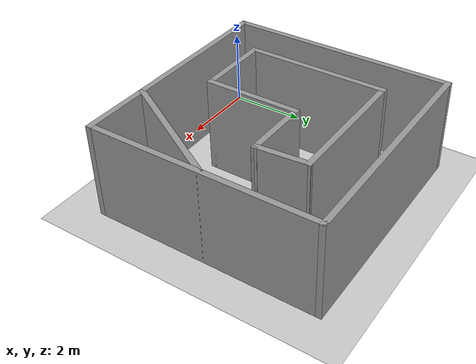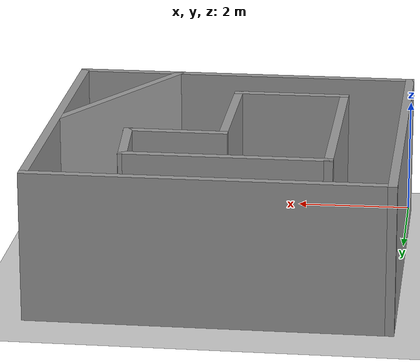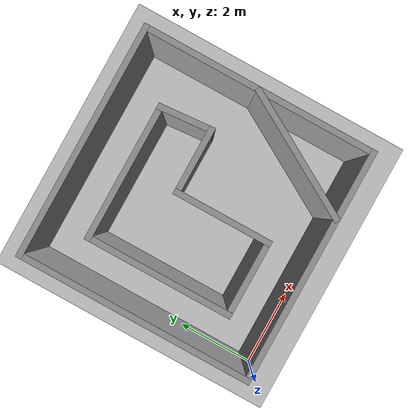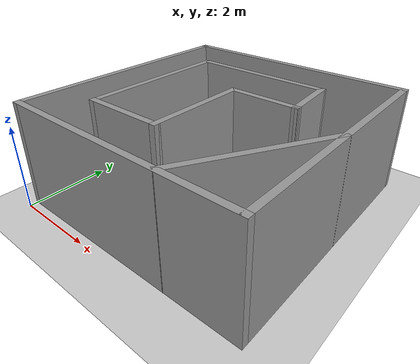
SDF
<sdf version="1.7">
 <world name="default">
  <light name="sun" type="directional">
   <pose>0 0 10 0 -0 0</pose>
   <diffuse>0.8 0.8 0.8 1</diffuse>
   <specular>0.2 0.2 0.2 1</specular>
   <attenuation>
    <range>1000</range>
    <constant>0.9</constant>
    <linear>0.01</linear>
    <quadratic>0.001</quadratic>
   </attenuation>
   <direction>-0.1 0.1 -0.9</direction>
   <spot><inner_angle>0</inner_angle><outer_angle>0</outer_angle><falloff>0</falloff></spot>
  </light>
  <model name="ground_plane">
   <static>1</static>
   <link name="link">
    <collision name="collision">
     <geometry><plane><normal>0 0 1</normal><size>100 100</size></plane></geometry>
     <surface>
      <contact><collide_bitmask>65535</collide_bitmask></contact>
      <friction><ode><mu>100</mu><mu2>50</mu2></ode></friction>
     </surface>
    </collision>
    <visual name="visual">
     <cast_shadows>0</cast_shadows>
     <geometry><plane><normal>0 0 1</normal><size>100 100</size></plane></geometry>
     <material>
      <script><uri>file://media/materials/scripts/gazebo.material</uri><name>Gazebo/Grey</name></script>
     </material>
    </visual>
   </link>
  </model>
  <gravity>0 0 -9.81</gravity>
  <magnetic_field>6e-06 2.3e-05 -4.2e-05</magnetic_field>
  <atmosphere type="adiabatic"/>
  <physics name="default_physics" default="0" type="ode">
   <max_step_size>0.001</max_step_size>
   <real_time_factor>1</real_time_factor>
   <real_time_update_rate>1000</real_time_update_rate>
  </physics>
  <scene><ambient>0.99 0.99 0.85 1</ambient><background>0.7 0.7 0.7 1</background><shadows>1</shadows></scene>
  <spherical_coordinates>
   <surface_model>EARTH_WGS84</surface_model>
   <latitude_deg>0</latitude_deg>
   <longitude_deg>0</longitude_deg>
   <elevation>0</elevation>
   <heading_deg>0</heading_deg>
  </spherical_coordinates>
  <model name="maze_walls">
   <pose>2.45275 3.18267 0 0 -0 1.5708</pose>
   <link name="Wall_0">
    <collision name="Wall_0_Collision">
     <geometry><box><size>6 0.15 2.5</size></box></geometry>
     <pose>0 0 1.25 0 -0 0</pose>
    </collision>
    <visual name="Wall_0_Visual">
     <pose>0 0 1.25 0 -0 0</pose>
     <geometry><box><size>6 0.15 2.5</size></box></geometry>
     <material>
      <script><uri>file://media/materials/scripts/gazebo.material</uri><name>Gazebo/Grey</name></script>
      <ambient>1 1 1 1</ambient>
     </material>
     <meta><layer>0</layer></meta>
    </visual>
    <pose>2.92873 -0.496274 0 0 -0 1.5708</pose>
   </link>
   <link name="Wall_1">
    <collision name="Wall_1_Collision">
     <geometry><box><size>6 0.15 2.5</size></box></geometry>
     <pose>0 0 1.25 0 -0 0</pose>
    </collision>
    <visual name="Wall_1_Visual">
     <pose>0 0 1.25 0 -0 0</pose>
     <geometry><box><size>6 0.15 2.5</size></box></geometry>
     <material>
      <script><uri>file://media/materials/scripts/gazebo.material</uri><name>Gazebo/Grey</name></script>
      <ambient>1 1 1 1</ambient>
     </material>
     <meta><layer>0</layer></meta>
    </visual>
    <pose>0.003726 2.42873 0 0 -0 3.14159</pose>
   </link>
   <link name="Wall_11">
    <collision name="Wall_11_Collision">
     <geometry><box><size>2.5 0.15 2.5</size></box></geometry>
     <pose>0 0 1.25 0 -0 0</pose>
    </collision>
    <visual name="Wall_11_Visual">
     <pose>0 0 1.25 0 -0 0</pose>
     <geometry><box><size>2.5 0.15 2.5</size></box></geometry>
     <material>
      <script><uri>file://media/materials/scripts/gazebo.material</uri><name>Gazebo/Grey</name></script>
      <ambient>1 1 1 1</ambient>
     </material>
     <meta><layer>0</layer></meta>
    </visual>
    <pose>-0.656274 -0.511274 0 0 -0 0</pose>
   </link>
   <link name="Wall_12">
    <collision name="Wall_12_Collision">
     <geometry><box><size>1.75 0.15 2.5</size></box></geometry>
     <pose>0 0 1.25 0 -0 0</pose>
    </collision>
    <visual name="Wall_12_Visual">
     <pose>0 0 1.25 0 -0 0</pose>
     <geometry><box><size>1.75 0.15 2.5</size></box></geometry>
     <material>
      <script><uri>file://media/materials/scripts/gazebo.material</uri><name>Gazebo/Grey</name></script>
      <ambient>1 1 1 1</ambient>
     </material>
     <meta><layer>0</layer></meta>
    </visual>
    <pose>0.518726 -1.31127 0 0 -0 -1.5708</pose>
   </link>
   <link name="Wall_13">
    <collision name="Wall_13_Collision">
     <geometry><box><size>1.40399 0.15 2.5</size></box></geometry>
     <pose>0 0 1.25 0 -0 0</pose>
    </collision>
    <visual name="Wall_13_Visual">
     <pose>0 0 1.25 0 -0 0</pose>
     <geometry><box><size>1.40399 0.15 2.5</size></box></geometry>
     <material>
      <script><uri>file://media/materials/scripts/gazebo.material</uri><name>Gazebo/Grey</name></script>
      <ambient>1 1 1 1</ambient>
     </material>
     <meta><layer>0</layer></meta>
    </visual>
    <pose>1.14373 -2.06127 0 0 -0 0.07983</pose>
   </link>
   <link name="Wall_15">
    <collision name="Wall_15_Collision">
     <geometry><box><size>3.5 0.15 2.5</size></box></geometry>
     <pose>0 0 1.25 0 -0 0</pose>
    </collision>
    <visual name="Wall_15_Visual">
     <pose>0 0 1.25 0 -0 0</pose>
     <geometry><box><size>3.5 0.15 2.5</size></box></geometry>
     <material>
      <script><uri>file://media/materials/scripts/gazebo.material</uri><name>Gazebo/Grey</name></script>
      <ambient>1 1 1 1</ambient>
     </material>
     <meta><layer>0</layer></meta>
    </visual>
    <pose>-1.45068 -2.55877 0 0 -0 -0.523599</pose>
   </link>
   <link name="Wall_3">
    <collision name="Wall_3_Collision">
     <geometry><box><size>3.5 0.15 2.5</size></box></geometry>
     <pose>0 0 1.25 0 -0 0</pose>
    </collision>
    <visual name="Wall_3_Visual">
     <pose>0 0 1.25 0 -0 0</pose>
     <geometry><box><size>3.5 0.15 2.5</size></box></geometry>
     <material>
      <script><uri>file://media/materials/scripts/gazebo.material</uri><name>Gazebo/Grey</name></script>
      <ambient>1 1 1 1</ambient>
     </material>
     <meta><layer>0</layer></meta>
    </visual>
    <pose>1.76873 -0.336274 0 0 -0 1.5708</pose>
   </link>
   <link name="Wall_4">
    <collision name="Wall_4_Collision">
     <geometry><box><size>3.75 0.15 2.5</size></box></geometry>
     <pose>0 0 1.25 0 -0 0</pose>
    </collision>
    <visual name="Wall_4_Visual">
     <pose>0 0 1.25 0 -0 0</pose>
     <geometry><box><size>3.75 0.15 2.5</size></box></geometry>
     <material>
      <script><uri>file://media/materials/scripts/gazebo.material</uri><name>Gazebo/Grey</name></script>
      <ambient>1 1 1 1</ambient>
     </material>
     <meta><layer>0</layer></meta>
    </visual>
    <pose>-0.031274 1.33873 0 0 -0 3.14159</pose>
   </link>
   <link name="Wall_6">
    <collision name="Wall_6_Collision">
     <geometry><box><size>6 0.15 2.5</size></box></geometry>
     <pose>0 0 1.25 0 -0 0</pose>
    </collision>
    <visual name="Wall_6_Visual">
     <pose>0 0 1.25 0 -0 0</pose>
     <geometry><box><size>6 0.15 2.5</size></box></geometry>
     <material>
      <script><uri>file://media/materials/scripts/gazebo.material</uri><name>Gazebo/Grey</name></script>
      <ambient>1 1 1 1</ambient>
     </material>
     <meta><layer>0</layer></meta>
    </visual>
    <pose>-2.92127 -0.496274 0 0 -0 -1.5708</pose>
   </link>
   <link name="Wall_7">
    <collision name="Wall_7_Collision">
     <geometry><box><size>6 0.15 2.5</size></box></geometry>
     <pose>0 0 1.25 0 -0 0</pose>
    </collision>
    <visual name="Wall_7_Visual">
     <pose>0 0 1.25 0 -0 0</pose>
     <geometry><box><size>6 0.15 2.5</size></box></geometry>
     <material>
      <script><uri>file://media/materials/scripts/gazebo.material</uri><name>Gazebo/Grey</name></script>
      <ambient>1 1 1 1</ambient>
     </material>
     <meta><layer>0</layer></meta>
    </visual>
    <pose>0.003726 -3.42127 0 0 -0 0</pose>
   </link>
   <link name="Wall_9">
    <collision name="Wall_9_Collision">
     <geometry><box><size>2 0.15 2.5</size></box></geometry>
     <pose>0 0 1.25 0 -0 0</pose>
    </collision>
    <visual name="Wall_9_Visual">
     <pose>0 0 1.25 0 -0 0</pose>
     <geometry><box><size>2 0.15 2.5</size></box></geometry>
     <material>
      <script><uri>file://media/materials/scripts/gazebo.material</uri><name>Gazebo/Grey</name></script>
      <ambient>1 1 1 1</ambient>
     </material>
     <meta><layer>0</layer></meta>
    </visual>
    <pose>-1.83127 0.413726 0 0 -0 -1.5708</pose>
   </link>
   <static>1</static>
  </model>
 </world>
</sdf>
